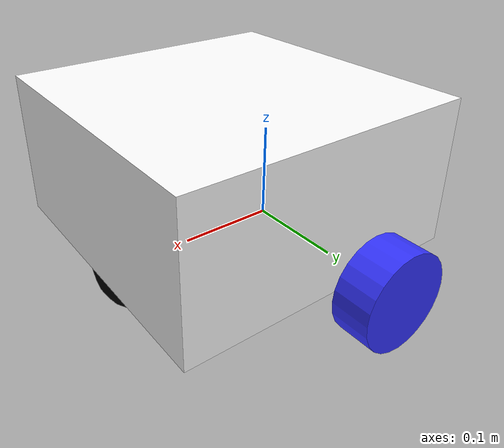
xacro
<?xml version="1.0"?>
<robot xmlns:xacro="http://www.ros.org/wiki/xacro">

  <xacro:include filename = "inertial_macros.xacro"/>

<material name="white">
<color rgba="1 1 1 1"/>
</material>

<material name="orange">
<color rgba="1 0.3 0.1 1"/>
</material>

<material name="blue">
<color rgba="0.2 0.2 1 1"/>
</material>

<material name="black">
<color rgba="0 0 0 1"/>
</material>

<material name="red">
<color rgba="1 0 0 1"/>
</material>

<link name="base_link">
</link>

<!--Base footprint-->
<joint name="base_footprint_joint" type="fixed">
    <parent link="base_link"/>
    <child link="base_footprint"/>
    <origin xyz="0 0 0" rpy = "0 0 0"/>

</joint>

<link name="base_footprint">
</link>

<!-- Chassis Link-->
<joint name="chassis_joint" type="fixed">
    <parent link="base_link"/>
    <child link="chassis"/>
    <origin xyz="-0.1 0 0"/>

</joint>

<link name="chassis">
    <visual>
        <origin xyz="0.15 0 0.08"/>
        <geometry>
            <box size="0.3 0.3 0.15"/>
        </geometry>
        <material name="white"/>
    </visual>
    <collision>
        <origin xyz="0.15 0 0.08"/>
        <geometry>
            <box size="0.3 0.3 0.15"/>
        </geometry>
    </collision>
<xacro:inertial_box mass = "5" x ="0" y = "0" z = "0.02">
    <origin xyz = "0.15 0 0.08" rpy = "0 0 0"/>
</xacro:inertial_box>
</link>
<gazebo refernce ="chassis">
    <material>Gazebo/white</material >
</gazebo>
<!-- Right Wheel Link-->

<joint name = "right_wheel_joint" type="continuous">
        <parent link="base_link"/>
        <child link="right_wheel"/>
        <origin xyz="0 -0.175 0" rpy="${pi/2} 0 0"/>
        <axis xyz="0 0 -1"/>
        <limits effort = "0.08" velocity="10.0"/>
</joint>

<link name="right_wheel">
     <visual>
        <geometry>
            <cylinder radius="0.05" length = "0.04"/>
        </geometry>
        <material name="blue"/>
    </visual>
     <collision>
        <geometry>
            <sphere radius="0.05"/>
        </geometry>
    </collision>
    <xacro:inertial_cylinder mass = "0.1" length ="0.04" radius = "0.05">
    <origin xyz = "0 0 0" rpy = "0 0 0"/>
</xacro:inertial_cylinder>
</link>
<gazebo refernce ="right_wheel">
    <material>Gazebo/blue</material>
</gazebo>

<!-- Left Wheel Link-->

<joint name = "left_wheel_joint" type="continuous">
        <parent link="base_link"/>
        <child link="left_wheel"/>
        <origin xyz="0 0.175 0" rpy="-${pi/2} 0 0"/>
        <axis xyz="0 0 1"/>
        <limits effort = "0.08" velocity="10.0"/>
</joint>

<link name = "left_wheel">
     <visual>
        <geometry>
            <cylinder radius="0.05" length = "0.04"/>
        </geometry>
        <material name="blue"/>
    </visual>

    <collision>
        <geometry>
            <sphere radius="0.05"/>
        </geometry>
    </collision>
<xacro:inertial_cylinder mass = "0.1" length ="0.04" radius = "0.05">
    <origin xyz = "0 0 0" rpy = "0 0 0"/>
</xacro:inertial_cylinder>
</link>
<gazebo refernce ="left_wheel">
    <material>Gazebo/blue</material >
</gazebo>
<!-- Caster Wheel Link-->

<joint name = "caster_wheel_joint" type="fixed">
        <parent link="chassis"/>
        <child link="caster_wheel"/>
        <origin xyz="0.25 0 0"/>
</joint>

<link name = "caster_wheel">
     <visual>
        <geometry>
            <sphere radius="0.05"/>
        </geometry>
        <material name="black"/>
    </visual>
    <collision>
        <geometry>
            <sphere radius="0.05"/>
        </geometry>
    </collision>
</link>
    <xacro:inertial_sphere mass = "0.1" radius = "0.05">
    <origin xyz = "0 0 0" rpy = "0 0 0"/>
</xacro:inertial_sphere>
<gazebo refernce ="caster_wheel">
    <material>Gazebo/black</material >
    <mu1 value = "0.001" />
    <mu2 value = "0.001" />
</gazebo>
</robot>
